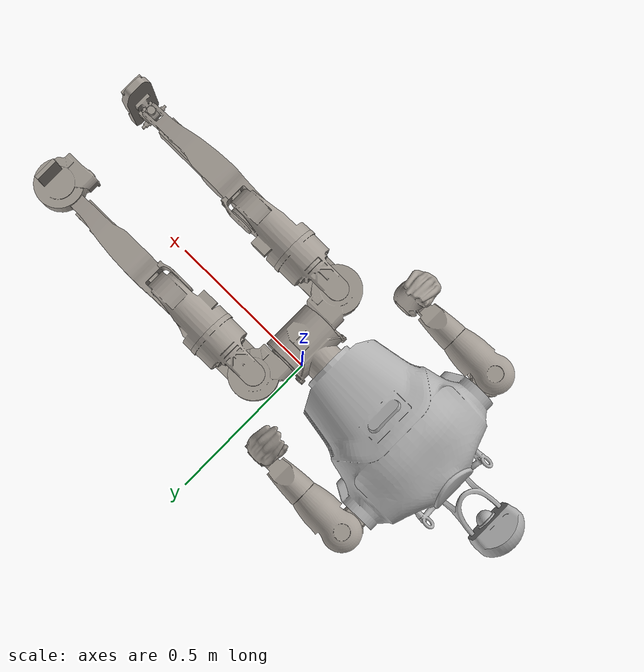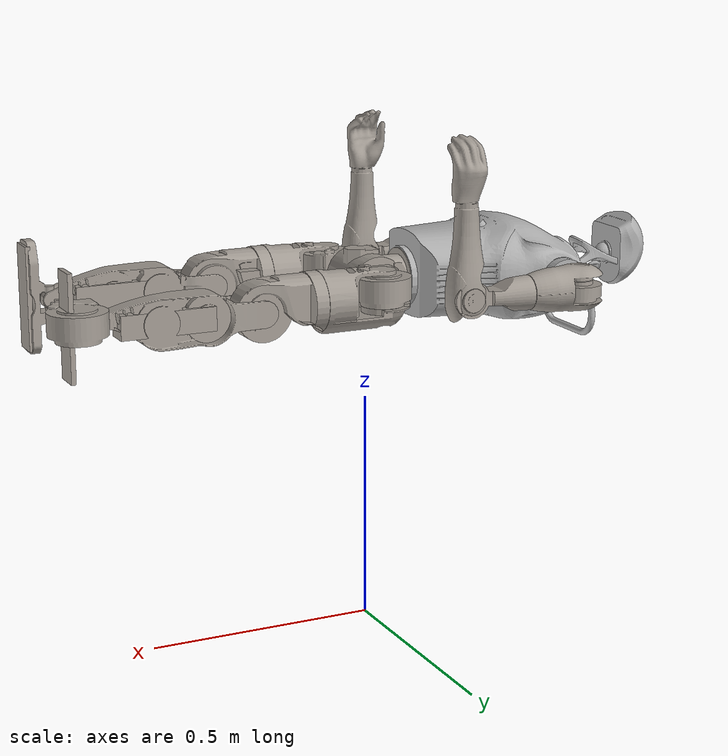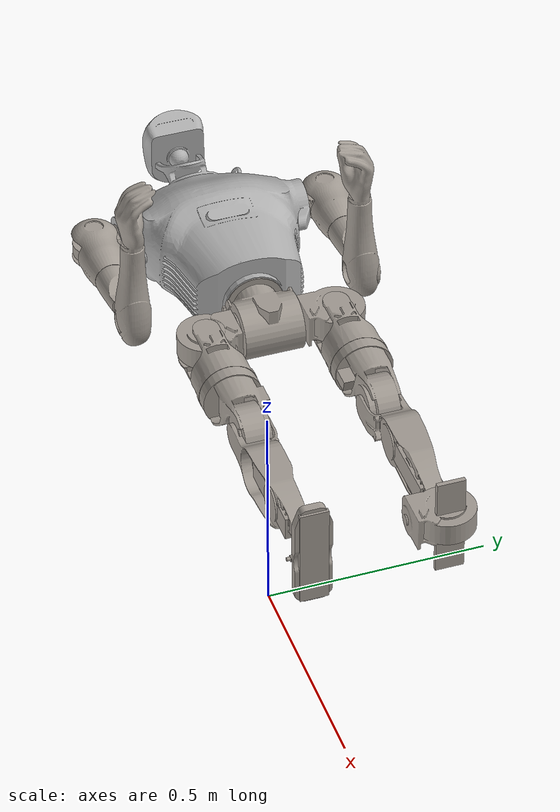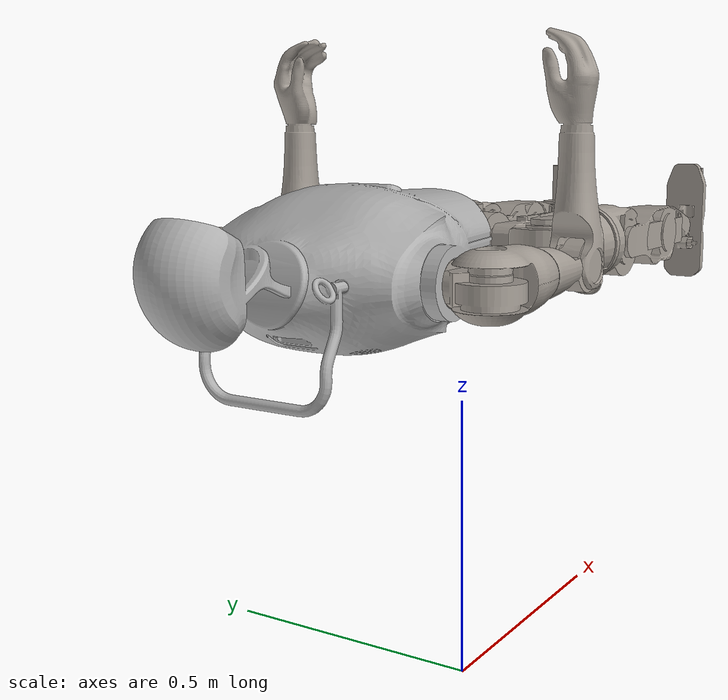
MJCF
<mujoco model="e3">
  <compiler angle="radian" meshdir="meshes/"/>

  <asset>
    <mesh name="pelvis" file="pelvis.STL"/>
    <mesh name="torso_link" file="torso_link.STL"/>
    <mesh name="leg_l1_link" file="leg_l1_link.STL"/>
    <mesh name="leg_l2_link_144" file="leg_l2_link_144.STL"/>
    <mesh name="leg_l3_link_144" file="leg_l3_link_144.STL"/>
    <mesh name="leg_l4_link" file="leg_l4_link.STL"/>
    <mesh name="leg_l5_link" file="leg_l5_link.STL"/>
    <mesh name="leg_l6_link" file="leg_l6_link.STL"/>
    <mesh name="leg_r1_link" file="leg_r1_link.STL"/>
    <mesh name="leg_r2_link_144" file="leg_r2_link_144.STL"/>
    <mesh name="leg_r3_link_144" file="leg_r3_link_144.STL"/>
    <mesh name="leg_r4_link" file="leg_r4_link.STL"/>
    <mesh name="leg_r5_link" file="leg_r5_link.STL"/>
    <mesh name="leg_r6_link" file="leg_r6_link.STL"/>
    <mesh name="arm_l1_link" file="arm_l1_link.STL"/>
    <mesh name="arm_l2_link" file="arm_l2_link.STL"/>
    <mesh name="arm_l3_link" file="arm_l3_link.STL"/>
    <mesh name="arm_l4_link" file="arm_l4_link.STL"/>
    <mesh name="arm_r1_link" file="arm_r1_link.STL"/>
    <mesh name="arm_r2_link" file="arm_r2_link.STL"/>
    <mesh name="arm_r3_link" file="arm_r3_link.STL"/>
    <mesh name="arm_r4_link" file="arm_r4_link.STL"/>
  </asset>

  <worldbody>
      <body name="pelvis_link" pos="0 0 0.76" quat="0.7071068 0 -0.7071068 0">
      <inertial pos="0.00050701 0.000302409 0.0356883" quat="0.999935 -0.0102796 -0.0049011 2.38871e-05" mass="5.12983" diaginertia="0.0228778 0.0195299 0.0120798"/>
      <joint name="floating_base_joint" type="free" limited="false" actuatorfrclimited="false"/>
      <geom type="mesh" contype="0" conaffinity="0" group="1" density="0" rgba="0.64706 0.61961 0.58824 1" mesh="pelvis"/>
      <geom type="mesh" rgba="0.64706 0.61961 0.58824 1" mesh="pelvis"/>
      <geom size="0.0075 0.0075 0.002" type="box" contype="0" conaffinity="0" group="1" density="0"/>

      <body name="left_hip_pitch_link" pos="0 0.1413 0">
        <inertial pos="0.011949 -0.00848 -0.026594" quat="0.79686 0.59057 -0.0942392 0.0857855" mass="1.8169" diaginertia="0.00165401 0.0016345 0.000897494"/>
        <joint name="left_hip_pitch_joint" pos="0 0 0" axis="0 1 0" range="-2.53 2.53" actuatorfrcrange="-144 144"/>
        <geom type="mesh" contype="0" conaffinity="0" group="1" density="0" rgba="0.64706 0.61961 0.58824 1" mesh="leg_l1_link"/>
        <geom type="mesh" rgba="0.64706 0.61961 0.58824 1" mesh="leg_l1_link"/>
        <body name="left_hip_roll_link" pos="0 0 -0.0285">
          <inertial pos="-0.002932 9.8e-05 -0.097396" quat="0.704761 -0.0466741 -0.0480729 0.706273" mass="2.26145" diaginertia="0.00637801 0.00565479 0.00437919"/>
          <joint name="left_hip_roll_joint" pos="0 0 0" axis="1 0 0" range="-0.611 3.23" actuatorfrcrange="-144 144"/>
          <geom type="mesh" contype="0" conaffinity="0" group="1" density="0" rgba="0.64706 0.61961 0.58824 1" mesh="leg_l2_link_144"/>
          <geom type="mesh" rgba="0.64706 0.61961 0.58824 1" mesh="leg_l2_link_144"/>
          <body name="left_hip_yaw_link" pos="0 0 -0.1458">
            <inertial pos="-0.001336 -0.000844 -0.104378" quat="0.678415 0.0561291 0.0503848 0.730797" mass="2.23322" diaginertia="0.00570127 0.00547716 0.00188058"/>
            <joint name="left_hip_yaw_joint" pos="0 0 0" axis="0 0 1" range="-1.05 1.05" actuatorfrcrange="-144 144"/>
            <geom type="mesh" contype="0" conaffinity="0" group="1" density="0" rgba="0.64706 0.61961 0.58824 1" mesh="leg_l3_link_144"/>
            <geom type="mesh" rgba="0.64706 0.61961 0.58824 1" mesh="leg_l3_link_144"/>
            <body name="left_knee_link" pos="-0.008 0 -0.1317">
              <inertial pos="0.001004 0.001585 -0.170623" quat="0.724379 -0.0187492 -0.000974962 0.689146" mass="2.88975" diaginertia="0.0212478 0.0206397 0.0028045"/>
              <joint name="left_knee_joint" pos="0 0 0" axis="0 1 0" range="-0.349 2.355" actuatorfrcrange="-144 144"/>
              <geom type="mesh" contype="0" conaffinity="0" group="1" density="0" rgba="0.64706 0.61961 0.58824 1" mesh="leg_l4_link"/>
              <geom size="0.025 0.025 0.1" pos="0 0 -0.2" type="box" rgba="0.64706 0.61961 0.58824 1"/>
              <body name="left_ankle_pitch_link" pos="0 0 -0.35">
                <inertial pos="0 0 0" quat="0 0.707107 0 0.707107" mass="0.088534" diaginertia="3.1681e-05 3.1274e-05 3.0975e-05"/>
                <joint name="left_ankle_pitch_joint" pos="0 0 0" axis="0 1 0" range="-0.785 1.05" actuatorfrcrange="-60 60"/>
                <geom type="mesh" contype="0" conaffinity="0" group="1" density="0" rgba="0.64706 0.61961 0.58824 1" mesh="leg_l5_link"/>
                <body name="left_ankle_roll_link">
                  <inertial pos="-0.000705 1.4e-05 -0.028746" mass="0.611" diaginertia="0.01 0.01 0.01"/>
                  <joint name="left_ankle_roll_joint" pos="0 0 0" axis="1 0 0" range="-0.26 0.26" actuatorfrcrange="-60 60"/>
                  <geom type="mesh" contype="0" conaffinity="0" group="1" density="0" rgba="0.64706 0.61961 0.58824 1" mesh="leg_l6_link"/>
                  <geom size="0.11 0.03 0.005" pos="0.01 0 -0.05" type="box" rgba="0.64706 0.61961 0.58824 1"/>
                </body>
              </body>
            </body>
          </body>
        </body>
      </body>
      <body name="right_hip_pitch_link" pos="0 -0.1413 0">
        <inertial pos="0.011914 0.008479 -0.026587" quat="0.591283 0.797251 -0.080998 0.0906401" mass="1.81686" diaginertia="0.00165394 0.00163348 0.000895579"/>
        <joint name="right_hip_pitch_joint" pos="0 0 0" axis="0 1 0" range="-2.53 2.53" actuatorfrcrange="-144 144"/>
        <geom type="mesh" contype="0" conaffinity="0" group="1" density="0" rgba="0.64706 0.61961 0.58824 1" mesh="leg_r1_link"/>
        <geom type="mesh" rgba="0.64706 0.61961 0.58824 1" mesh="leg_r1_link"/>
        <body name="right_hip_roll_link" pos="0 0 -0.0285">
          <inertial pos="-0.002874 0.000215 -0.097305" quat="0.70414 -0.0451691 -0.0444057 0.707231" mass="2.02007" diaginertia="0.00639702 0.00566838 0.00439261"/>
          <joint name="right_hip_roll_joint" pos="0 0 0" axis="1 0 0" range="-3.23 0.611" actuatorfrcrange="-144 144"/>
          <geom type="mesh" contype="0" conaffinity="0" group="1" density="0" rgba="0.64706 0.61961 0.58824 1" mesh="leg_r2_link_144"/>
          <geom type="mesh" rgba="0.64706 0.61961 0.58824 1" mesh="leg_r2_link_144"/>
          <body name="right_hip_yaw_link" pos="0 0 -0.1458">
            <inertial pos="0.000912 0.00135 -0.104391" quat="0.996415 0.0754384 0.00360997 -0.0381244" mass="2.23172" diaginertia="0.00569131 0.0054682 0.00187648"/>
            <joint name="right_hip_yaw_joint" pos="0 0 0" axis="0 0 1" range="-1.05 1.05" actuatorfrcrange="-144 144"/>
            <geom type="mesh" contype="0" conaffinity="0" group="1" density="0" rgba="0.64706 0.61961 0.58824 1" mesh="leg_r3_link_144"/>
            <geom type="mesh" rgba="0.64706 0.61961 0.58824 1" mesh="leg_r3_link_144"/>
            <body name="right_knee_link" pos="-0.008 0 -0.1317">
              <inertial pos="-0.001668 -0.001457 -0.178503" quat="0.683345 0.014853 0.00386529 0.729935" mass="2.86629" diaginertia="0.0230219 0.0222035 0.00298067"/>
              <joint name="right_knee_joint" pos="0 0 0" axis="0 1 0" range="-0.349 2.355" actuatorfrcrange="-144 144"/>
              <geom type="mesh" contype="0" conaffinity="0" group="1" density="0" rgba="0.64706 0.61961 0.58824 1" mesh="leg_r4_link"/>
              <geom size="0.025 0.025 0.1" pos="0 0 -0.2" type="box" rgba="0.64706 0.61961 0.58824 1"/>
              <body name="right_ankle_pitch_link" pos="0 0 -0.35">
                <inertial pos="0 0 0" quat="0.5 0.5 0.5 0.5" mass="0.088534" diaginertia="3.1274e-05 3.1274e-05 3.0975e-05"/>
                <joint name="right_ankle_pitch_joint" pos="0 0 0" axis="0 1 0" range="-0.785 1.05" actuatorfrcrange="-60 60"/>
                <geom type="mesh" contype="0" conaffinity="0" group="1" density="0" rgba="0.64706 0.61961 0.58824 1" mesh="leg_r5_link"/>
                <body name="right_ankle_roll_link">
                  <inertial pos="-0.000705 1.4e-05 -0.028746" mass="0.611" diaginertia="0.01 0.01 0.01"/>
                  <joint name="right_ankle_roll_joint" pos="0 0 0" axis="1 0 0" range="-0.26 0.26" actuatorfrcrange="-60 60"/>
                  <geom type="mesh" contype="0" conaffinity="0" group="1" density="0" rgba="0.64706 0.61961 0.58824 1" mesh="leg_r6_link"/>
                  <geom size="0.11 0.03 0.005" pos="0.01 0 -0.05" type="box" rgba="0.64706 0.61961 0.58824 1"/>
                </body>
              </body>
            </body>
          </body>
        </body>
      </body>
      <body name="torso_link" pos="0 0 0.3763">
        <inertial pos="-0.006939 -0.002038 -0.085719" quat="0.999832 -0.0171582 -0.0028241 0.00581938" mass="13.7596" diaginertia="0.327512 0.269633 0.140296"/>
        <joint name="waist_joint" pos="0 0 0" axis="0 0 1" range="-1.57 1.57" actuatorfrcrange="-144 144"/>
        <geom type="mesh" contype="0" conaffinity="0" group="1" density="0" rgba="0.7 0.7 0.7 1" mesh="torso_link"/>
        <geom type="mesh" rgba="0.7 0.7 0.7 1" mesh="torso_link"/>
        <body name="left_shoulder_pitch_link" pos="0 0.25799 0">
          <inertial pos="-0.003432 -0.009458 -0.00891" mass="0.859213" diaginertia="0.01 0.01 0.01"/>
          <joint name="left_shoulder_pitch_joint" pos="0 0 0" axis="0 1 0" range="-2.74 1.96" actuatorfrcrange="-40 40"/>
          <geom type="mesh" contype="0" conaffinity="0" group="1" density="0" rgba="0.64706 0.61961 0.58824 1" mesh="arm_l1_link"/>
          <body name="left_shoulder_roll_link">
            <inertial pos="0.004195 0.000475 -0.057018" mass="0.701407" diaginertia="0.01 0.01 0.01"/>
            <joint name="left_shoulder_roll_joint" pos="0 0 0" axis="1 0 0" range="-0.17 3.01" actuatorfrcrange="-40 40"/>
            <geom type="mesh" contype="0" conaffinity="0" group="1" density="0" rgba="0.64706 0.61961 0.58824 1" mesh="arm_l2_link"/>
            <body name="left_shoulder_yaw_link" pos="0 0 -0.1019">
              <inertial pos="-0.000223 0.000795 -0.127372" mass="0.541958" diaginertia="0.01 0.01 0.01"/>
              <joint name="left_shoulder_yaw_joint" pos="0 0 0" axis="0 0 1" range="-3.14 1.57" actuatorfrcrange="-40 40"/>
              <geom type="mesh" contype="0" conaffinity="0" group="1" density="0" rgba="0.64706 0.61961 0.58824 1" mesh="arm_l3_link"/>
              <geom type="mesh" rgba="0.64706 0.61961 0.58824 1" mesh="arm_l3_link"/>
              <body name="left_elbow_link" pos="0 -0.0062 -0.1616">
                <inertial pos="0.103629 0.001055 -0.003321" mass="0.368568" diaginertia="0.01 0.01 0.01"/>
                <joint name="left_elbow_joint" pos="0 0 0" axis="0 1 0" range="-0.9 1.57" actuatorfrcrange="-40 40"/>
                <geom type="mesh" contype="0" conaffinity="0" group="1" density="0" rgba="0.64706 0.61961 0.58824 1" mesh="arm_l4_link"/>
                <geom type="mesh" rgba="0.64706 0.61961 0.58824 1" mesh="arm_l4_link"/>
              </body>
            </body>
          </body>
        </body>
        <body name="right_shoulder_pitch_link" pos="0 -0.25799 0">
          <inertial pos="-0.003672 0.009404 -0.000747" mass="0.870023" diaginertia="0.01 0.01 0.01"/>
          <joint name="right_shoulder_pitch_joint" pos="0 0 0" axis="0 1 0" range="-2.74 1.96" actuatorfrcrange="-40 40"/>
          <geom type="mesh" contype="0" conaffinity="0" group="1" density="0" rgba="0.64706 0.61961 0.58824 1" mesh="arm_r1_link"/>
          <body name="right_shoulder_roll_link">
            <inertial pos="0.004341 -0.000257 -0.056511" mass="0.712915" diaginertia="0.01 0.01 0.01"/>
            <joint name="right_shoulder_roll_joint" pos="0 0 0" axis="1 0 0" range="-3.01 0.17" actuatorfrcrange="-40 40"/>
            <geom type="mesh" contype="0" conaffinity="0" group="1" density="0" rgba="0.64706 0.61961 0.58824 1" mesh="arm_r2_link"/>
            <body name="right_shoulder_yaw_link" pos="0 0 -0.1019">
              <inertial pos="-0.00014 -0.000801 -0.127387" mass="0.541111" diaginertia="0.01 0.01 0.01"/>
              <joint name="right_shoulder_yaw_joint" pos="0 0 0" axis="0 0 1" range="-1.57 3.14" actuatorfrcrange="-40 40"/>
              <geom type="mesh" contype="0" conaffinity="0" group="1" density="0" rgba="0.64706 0.61961 0.58824 1" mesh="arm_r3_link"/>
              <geom type="mesh" rgba="0.64706 0.61961 0.58824 1" mesh="arm_r3_link"/>
              <body name="right_elbow_link" pos="0 0.0062 -0.1616">
                <inertial pos="0.103611 -0.001052 -0.003324" mass="0.368568" diaginertia="0.01 0.01 0.01"/>
                <joint name="right_elbow_joint" pos="0 0 0" axis="0 1 0" range="-0.9 1.57" actuatorfrcrange="-40 40"/>
                <geom type="mesh" contype="0" conaffinity="0" group="1" density="0" rgba="0.64706 0.61961 0.58824 1" mesh="arm_r4_link"/>
                <geom type="mesh" rgba="0.64706 0.61961 0.58824 1" mesh="arm_r4_link"/>
              </body>
            </body>
          </body>
        </body>
      </body>
    </body>
  </worldbody>
  <actuator>
  <motor name="left_hip_pitch_joint" joint="left_hip_pitch_joint"/>
  <motor name="left_hip_roll_joint" joint="left_hip_roll_joint"/>
  <motor name="left_hip_yaw_joint" joint="left_hip_yaw_joint"/>
  <motor name="left_knee_joint" joint="left_knee_joint"/>
  <motor name="left_ankle_pitch_joint" joint="left_ankle_pitch_joint"/>
  <motor name="left_ankle_roll_joint" joint="left_ankle_roll_joint"/>
  <motor name="right_hip_pitch_joint" joint="right_hip_pitch_joint"/>
  <motor name="right_hip_roll_joint" joint="right_hip_roll_joint"/>
  <motor name="right_hip_yaw_joint" joint="right_hip_yaw_joint"/>
  <motor name="right_knee_joint" joint="right_knee_joint"/>
  <motor name="right_ankle_pitch_joint" joint="right_ankle_pitch_joint"/>
  <motor name="right_ankle_roll_joint" joint="right_ankle_roll_joint"/>

  <motor name="waist_joint" joint="waist_joint"/>

  <motor name="left_shoulder_pitch_joint" joint="left_shoulder_pitch_joint"/>
  <motor name="left_shoulder_roll_joint" joint="left_shoulder_roll_joint"/>
  <motor name="left_shoulder_yaw_joint" joint="left_shoulder_yaw_joint"/>
  <motor name="left_elbow_joint" joint="left_elbow_joint"/>
  <motor name="right_shoulder_pitch_joint" joint="right_shoulder_pitch_joint"/>
  <motor name="right_shoulder_roll_joint" joint="right_shoulder_roll_joint"/>
  <motor name="right_shoulder_yaw_joint" joint="right_shoulder_yaw_joint"/>
  <motor name="right_elbow_joint" joint="right_elbow_joint"/>
  </actuator>
</mujoco>
